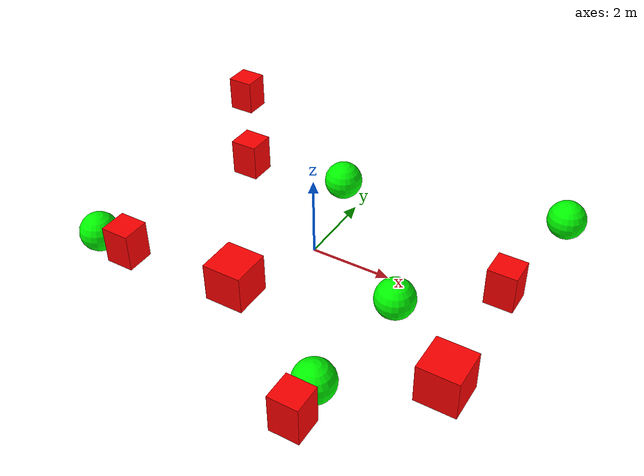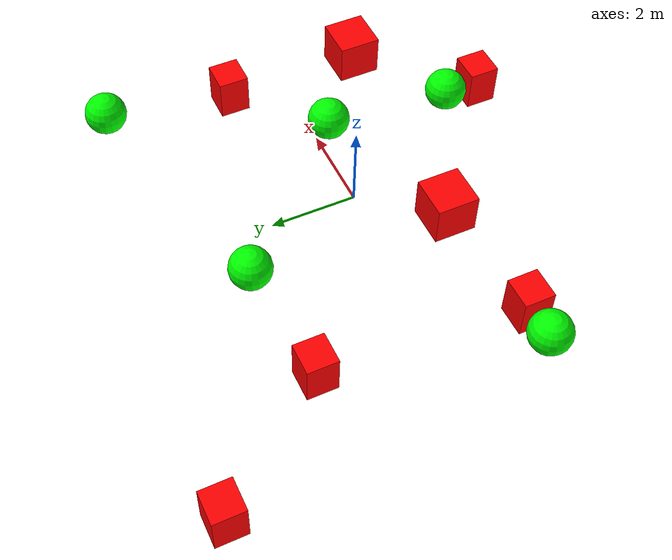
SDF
<?xml version='1.0'?>
<sdf version='1.7'>
  <model name='obstacles'>
    <link name='link_0_clone'>
      <inertial>
        <mass>1</mass>
        <inertia>
          <ixx>0.166667</ixx>
          <ixy>0</ixy>
          <ixz>0</ixz>
          <iyy>0.166667</iyy>
          <iyz>0</iyz>
          <izz>0.166667</izz>
        </inertia>
        <pose>0 0 0 0 -0 0</pose>
      </inertial>
      <pose>-1.07577 -1.79208 0 0 -0 0</pose>
      <gravity>1</gravity>
      <self_collide>0</self_collide>
      <kinematic>0</kinematic>
      <enable_wind>0</enable_wind>
      <visual name='visual'>
        <pose>0 0 0 0 -0 0</pose>
        <geometry>
          <box>
            <size>1 1 1</size>
          </box>
        </geometry>
        <material>
          <lighting>1</lighting>
          <script>
            <uri>file://media/materials/scripts/gazebo.material</uri>
            <name>Gazebo/Grey</name>
          </script>
          <shader type='pixel'>
            <normal_map>__default__</normal_map>
          </shader>
          <ambient>1 0 0 0</ambient>
          <diffuse>0.7 0.7 0.7 1</diffuse>
          <specular>0.01 0.01 0.01 1</specular>
          <emissive>0 0 0 1</emissive>
        </material>
        <transparency>0</transparency>
        <cast_shadows>1</cast_shadows>
      </visual>
      <collision name='collision'>
        <laser_retro>0</laser_retro>
        <max_contacts>10</max_contacts>
        <pose>0 0 0 0 -0 0</pose>
        <geometry>
          <box>
            <size>1 1 1</size>
          </box>
        </geometry>
        <surface>
          <friction>
            <ode>
              <mu>1</mu>
              <mu2>1</mu2>
              <fdir1>0 0 0</fdir1>
              <slip1>0</slip1>
              <slip2>0</slip2>
            </ode>
            <torsional>
              <coefficient>1</coefficient>
              <patch_radius>0</patch_radius>
              <surface_radius>0</surface_radius>
              <use_patch_radius>1</use_patch_radius>
              <ode>
                <slip>0</slip>
              </ode>
            </torsional>
          </friction>
          <bounce>
            <restitution_coefficient>0</restitution_coefficient>
            <threshold>1e+06</threshold>
          </bounce>
          <contact>
            <collide_without_contact>0</collide_without_contact>
            <collide_without_contact_bitmask>1</collide_without_contact_bitmask>
            <collide_bitmask>1</collide_bitmask>
            <ode>
              <soft_cfm>0</soft_cfm>
              <soft_erp>0.2</soft_erp>
              <kp>1e+13</kp>
              <kd>1</kd>
              <max_vel>0.01</max_vel>
              <min_depth>0</min_depth>
            </ode>
            <bullet>
              <split_impulse>1</split_impulse>
              <split_impulse_penetration_threshold>-0.01</split_impulse_penetration_threshold>
              <soft_cfm>0</soft_cfm>
              <soft_erp>0.2</soft_erp>
              <kp>1e+13</kp>
              <kd>1</kd>
            </bullet>
          </contact>
        </surface>
      </collision>
    </link>
    <link name='link_0_clone_clone'>
      <inertial>
        <mass>0.526541</mass>
        <inertia>
          <ixx>0.0663709</ixx>
          <ixy>0</ixy>
          <ixz>0</ixz>
          <iyy>0.0676106</iyy>
          <iyz>0</iyz>
          <izz>0.0462246</izz>
        </inertia>
        <pose>0 0 0 0 -0 0</pose>
      </inertial>
      <pose>4.42258 1.23745 0 0 -0 0</pose>
      <gravity>1</gravity>
      <self_collide>0</self_collide>
      <kinematic>0</kinematic>
      <enable_wind>0</enable_wind>
      <visual name='visual'>
        <pose>0 0 0 0 -0 0</pose>
        <geometry>
          <box>
            <size>0.735432 0.715967 1</size>
          </box>
        </geometry>
        <material>
          <lighting>1</lighting>
          <script>
            <uri>file://media/materials/scripts/gazebo.material</uri>
            <name>Gazebo/Grey</name>
          </script>
          <shader type='pixel'>
            <normal_map>__default__</normal_map>
          </shader>
          <ambient>1 0 0 0</ambient>
          <diffuse>0.7 0.7 0.7 1</diffuse>
          <specular>0.01 0.01 0.01 1</specular>
          <emissive>0 0 0 1</emissive>
        </material>
        <transparency>0</transparency>
        <cast_shadows>1</cast_shadows>
      </visual>
      <visual name='ModelPreview_0::link_0_clone_clone::visual_1'>
        <pose>0 0 0 0 -0 0</pose>
        <geometry>
          <box>
            <size>0.735432 0.715967 1</size>
          </box>
        </geometry>
        <material>
          <lighting>1</lighting>
          <script>
            <uri>file://media/materials/scripts/gazebo.material</uri>
            <name>Gazebo/Grey</name>
          </script>
          <shader type='pixel'>
            <normal_map>__default__</normal_map>
          </shader>
          <ambient>1 0 0 0</ambient>
          <diffuse>0.7 0.7 0.7 1</diffuse>
          <specular>0.01 0.01 0.01 1</specular>
          <emissive>0 0 0 1</emissive>
        </material>
        <transparency>0</transparency>
        <cast_shadows>1</cast_shadows>
      </visual>
      <collision name='collision'>
        <laser_retro>0</laser_retro>
        <max_contacts>10</max_contacts>
        <pose>0 0 0 0 -0 0</pose>
        <geometry>
          <box>
            <size>0.735432 0.715967 1</size>
          </box>
        </geometry>
        <surface>
          <friction>
            <ode>
              <mu>1</mu>
              <mu2>1</mu2>
              <fdir1>0 0 0</fdir1>
              <slip1>0</slip1>
              <slip2>0</slip2>
            </ode>
            <torsional>
              <coefficient>1</coefficient>
              <patch_radius>0</patch_radius>
              <surface_radius>0</surface_radius>
              <use_patch_radius>1</use_patch_radius>
              <ode>
                <slip>0</slip>
              </ode>
            </torsional>
          </friction>
          <bounce>
            <restitution_coefficient>0</restitution_coefficient>
            <threshold>1e+06</threshold>
          </bounce>
          <contact>
            <collide_without_contact>0</collide_without_contact>
            <collide_without_contact_bitmask>1</collide_without_contact_bitmask>
            <collide_bitmask>1</collide_bitmask>
            <ode>
              <soft_cfm>0</soft_cfm>
              <soft_erp>0.2</soft_erp>
              <kp>1e+13</kp>
              <kd>1</kd>
              <max_vel>0.01</max_vel>
              <min_depth>0</min_depth>
            </ode>
            <bullet>
              <split_impulse>1</split_impulse>
              <split_impulse_penetration_threshold>-0.01</split_impulse_penetration_threshold>
              <soft_cfm>0</soft_cfm>
              <soft_erp>0.2</soft_erp>
              <kp>1e+13</kp>
              <kd>1</kd>
            </bullet>
          </contact>
        </surface>
      </collision>
    </link>
    <link name='link_0_clone_clone_0'>
      <inertial>
        <mass>1</mass>
        <inertia>
          <ixx>0.166667</ixx>
          <ixy>0</ixy>
          <ixz>0</ixz>
          <iyy>0.166667</iyy>
          <iyz>0</iyz>
          <izz>0.166667</izz>
        </inertia>
        <pose>0 0 0 0 -0 0</pose>
      </inertial>
      <pose>4.46974 -2.09336 0 0 -0 0</pose>
      <gravity>1</gravity>
      <self_collide>0</self_collide>
      <kinematic>0</kinematic>
      <enable_wind>0</enable_wind>
      <visual name='visual'>
        <pose>0 0 0 0 -0 0</pose>
        <geometry>
          <box>
            <size>1 1 1</size>
          </box>
        </geometry>
        <material>
          <lighting>1</lighting>
          <script>
            <uri>file://media/materials/scripts/gazebo.material</uri>
            <name>Gazebo/Grey</name>
          </script>
          <shader type='pixel'>
            <normal_map>__default__</normal_map>
          </shader>
          <ambient>1 0 0 0</ambient>
          <diffuse>0.7 0.7 0.7 1</diffuse>
          <specular>0.01 0.01 0.01 1</specular>
          <emissive>0 0 0 1</emissive>
        </material>
        <transparency>0</transparency>
        <cast_shadows>1</cast_shadows>
      </visual>
      <collision name='collision'>
        <laser_retro>0</laser_retro>
        <max_contacts>10</max_contacts>
        <pose>0 0 0 0 -0 0</pose>
        <geometry>
          <box>
            <size>1 1 1</size>
          </box>
        </geometry>
        <surface>
          <friction>
            <ode>
              <mu>1</mu>
              <mu2>1</mu2>
              <fdir1>0 0 0</fdir1>
              <slip1>0</slip1>
              <slip2>0</slip2>
            </ode>
            <torsional>
              <coefficient>1</coefficient>
              <patch_radius>0</patch_radius>
              <surface_radius>0</surface_radius>
              <use_patch_radius>1</use_patch_radius>
              <ode>
                <slip>0</slip>
              </ode>
            </torsional>
          </friction>
          <bounce>
            <restitution_coefficient>0</restitution_coefficient>
            <threshold>1e+06</threshold>
          </bounce>
          <contact>
            <collide_without_contact>0</collide_without_contact>
            <collide_without_contact_bitmask>1</collide_without_contact_bitmask>
            <collide_bitmask>1</collide_bitmask>
            <ode>
              <soft_cfm>0</soft_cfm>
              <soft_erp>0.2</soft_erp>
              <kp>1e+13</kp>
              <kd>1</kd>
              <max_vel>0.01</max_vel>
              <min_depth>0</min_depth>
            </ode>
            <bullet>
              <split_impulse>1</split_impulse>
              <split_impulse_penetration_threshold>-0.01</split_impulse_penetration_threshold>
              <soft_cfm>0</soft_cfm>
              <soft_erp>0.2</soft_erp>
              <kp>1e+13</kp>
              <kd>1</kd>
            </bullet>
          </contact>
        </surface>
      </collision>
    </link>
    <link name='link_0_clone_clone_clone'>
      <inertial>
        <mass>0.526541</mass>
        <inertia>
          <ixx>0.0663709</ixx>
          <ixy>0</ixy>
          <ixz>0</ixz>
          <iyy>0.0676106</iyy>
          <iyz>0</iyz>
          <izz>0.0462246</izz>
        </inertia>
        <pose>0 0 0 0 -0 0</pose>
      </inertial>
      <pose>-5.87134 5.51331 0 0 -0 0</pose>
      <gravity>1</gravity>
      <self_collide>0</self_collide>
      <kinematic>0</kinematic>
      <enable_wind>0</enable_wind>
      <visual name='visual_1'>
        <pose>0 0 0 0 -0 0</pose>
        <geometry>
          <box>
            <size>0.735432 0.715967 1</size>
          </box>
        </geometry>
        <material>
          <lighting>1</lighting>
          <script>
            <uri>file://media/materials/scripts/gazebo.material</uri>
            <name>Gazebo/Grey</name>
          </script>
          <shader type='pixel'>
            <normal_map>__default__</normal_map>
          </shader>
          <ambient>1 0 0 0</ambient>
          <diffuse>0.7 0.7 0.7 1</diffuse>
          <specular>0.01 0.01 0.01 1</specular>
          <emissive>0 0 0 1</emissive>
        </material>
        <transparency>0</transparency>
        <cast_shadows>1</cast_shadows>
      </visual>
      <visual name='visual'>
        <pose>0 0 0 0 -0 0</pose>
        <geometry>
          <box>
            <size>0.735432 0.715967 1</size>
          </box>
        </geometry>
        <material>
          <lighting>1</lighting>
          <script>
            <uri>file://media/materials/scripts/gazebo.material</uri>
            <name>Gazebo/Grey</name>
          </script>
          <shader type='pixel'>
            <normal_map>__default__</normal_map>
          </shader>
          <ambient>1 0 0 0</ambient>
          <diffuse>0.7 0.7 0.7 1</diffuse>
          <specular>0.01 0.01 0.01 1</specular>
          <emissive>0 0 0 1</emissive>
        </material>
        <transparency>0</transparency>
        <cast_shadows>1</cast_shadows>
      </visual>
      <collision name='collision'>
        <laser_retro>0</laser_retro>
        <max_contacts>10</max_contacts>
        <pose>0 0 0 0 -0 0</pose>
        <geometry>
          <box>
            <size>0.735432 0.715967 1</size>
          </box>
        </geometry>
        <surface>
          <friction>
            <ode>
              <mu>1</mu>
              <mu2>1</mu2>
              <fdir1>0 0 0</fdir1>
              <slip1>0</slip1>
              <slip2>0</slip2>
            </ode>
            <torsional>
              <coefficient>1</coefficient>
              <patch_radius>0</patch_radius>
              <surface_radius>0</surface_radius>
              <use_patch_radius>1</use_patch_radius>
              <ode>
                <slip>0</slip>
              </ode>
            </torsional>
          </friction>
          <bounce>
            <restitution_coefficient>0</restitution_coefficient>
            <threshold>1e+06</threshold>
          </bounce>
          <contact>
            <collide_without_contact>0</collide_without_contact>
            <collide_without_contact_bitmask>1</collide_without_contact_bitmask>
            <collide_bitmask>1</collide_bitmask>
            <ode>
              <soft_cfm>0</soft_cfm>
              <soft_erp>0.2</soft_erp>
              <kp>1e+13</kp>
              <kd>1</kd>
              <max_vel>0.01</max_vel>
              <min_depth>0</min_depth>
            </ode>
            <bullet>
              <split_impulse>1</split_impulse>
              <split_impulse_penetration_threshold>-0.01</split_impulse_penetration_threshold>
              <soft_cfm>0</soft_cfm>
              <soft_erp>0.2</soft_erp>
              <kp>1e+13</kp>
              <kd>1</kd>
            </bullet>
          </contact>
        </surface>
      </collision>
    </link>
    <link name='link_0_clone_clone_clone_0'>
      <inertial>
        <mass>0.526541</mass>
        <inertia>
          <ixx>0.0663709</ixx>
          <ixy>0</ixy>
          <ixz>0</ixz>
          <iyy>0.0676106</iyy>
          <iyz>0</iyz>
          <izz>0.0462246</izz>
        </inertia>
        <pose>0 0 0 0 -0 0</pose>
      </inertial>
      <pose>-3.71229 2.654 0 0 -0 0</pose>
      <gravity>1</gravity>
      <self_collide>0</self_collide>
      <kinematic>0</kinematic>
      <enable_wind>0</enable_wind>
      <visual name='visual'>
        <pose>0 0 0 0 -0 0</pose>
        <geometry>
          <box>
            <size>0.735432 0.715967 1</size>
          </box>
        </geometry>
        <material>
          <lighting>1</lighting>
          <script>
            <uri>file://media/materials/scripts/gazebo.material</uri>
            <name>Gazebo/Grey</name>
          </script>
          <shader type='pixel'>
            <normal_map>__default__</normal_map>
          </shader>
          <ambient>1 0 0 0</ambient>
          <diffuse>0.7 0.7 0.7 1</diffuse>
          <specular>0.01 0.01 0.01 1</specular>
          <emissive>0 0 0 1</emissive>
        </material>
        <transparency>0</transparency>
        <cast_shadows>1</cast_shadows>
      </visual>
      <visual name='visual_1'>
        <pose>0 0 0 0 -0 0</pose>
        <geometry>
          <box>
            <size>0.735432 0.715967 1</size>
          </box>
        </geometry>
        <material>
          <lighting>1</lighting>
          <script>
            <uri>file://media/materials/scripts/gazebo.material</uri>
            <name>Gazebo/Grey</name>
          </script>
          <shader type='pixel'>
            <normal_map>__default__</normal_map>
          </shader>
          <ambient>1 0 0 0</ambient>
          <diffuse>0.7 0.7 0.7 1</diffuse>
          <specular>0.01 0.01 0.01 1</specular>
          <emissive>0 0 0 1</emissive>
        </material>
        <transparency>0</transparency>
        <cast_shadows>1</cast_shadows>
      </visual>
      <collision name='collision'>
        <laser_retro>0</laser_retro>
        <max_contacts>10</max_contacts>
        <pose>0 0 0 0 -0 0</pose>
        <geometry>
          <box>
            <size>0.735432 0.715967 1</size>
          </box>
        </geometry>
        <surface>
          <friction>
            <ode>
              <mu>1</mu>
              <mu2>1</mu2>
              <fdir1>0 0 0</fdir1>
              <slip1>0</slip1>
              <slip2>0</slip2>
            </ode>
            <torsional>
              <coefficient>1</coefficient>
              <patch_radius>0</patch_radius>
              <surface_radius>0</surface_radius>
              <use_patch_radius>1</use_patch_radius>
              <ode>
                <slip>0</slip>
              </ode>
            </torsional>
          </friction>
          <bounce>
            <restitution_coefficient>0</restitution_coefficient>
            <threshold>1e+06</threshold>
          </bounce>
          <contact>
            <collide_without_contact>0</collide_without_contact>
            <collide_without_contact_bitmask>1</collide_without_contact_bitmask>
            <collide_bitmask>1</collide_bitmask>
            <ode>
              <soft_cfm>0</soft_cfm>
              <soft_erp>0.2</soft_erp>
              <kp>1e+13</kp>
              <kd>1</kd>
              <max_vel>0.01</max_vel>
              <min_depth>0</min_depth>
            </ode>
            <bullet>
              <split_impulse>1</split_impulse>
              <split_impulse_penetration_threshold>-0.01</split_impulse_penetration_threshold>
              <soft_cfm>0</soft_cfm>
              <soft_erp>0.2</soft_erp>
              <kp>1e+13</kp>
              <kd>1</kd>
            </bullet>
          </contact>
        </surface>
      </collision>
    </link>
    <link name='link_0_clone_clone_clone_0_clone'>
      <inertial>
        <mass>0.526541</mass>
        <inertia>
          <ixx>0.0663709</ixx>
          <ixy>0</ixy>
          <ixz>0</ixz>
          <iyy>0.0676106</iyy>
          <iyz>0</iyz>
          <izz>0.0462246</izz>
        </inertia>
        <pose>0 0 0 0 -0 0</pose>
      </inertial>
      <pose>2.20908 -4.40073 0 0 -0 0</pose>
      <gravity>1</gravity>
      <self_collide>0</self_collide>
      <kinematic>0</kinematic>
      <enable_wind>0</enable_wind>
      <visual name='visual_1'>
        <pose>0 0 0 0 -0 0</pose>
        <geometry>
          <box>
            <size>0.735432 0.715967 1</size>
          </box>
        </geometry>
        <material>
          <lighting>1</lighting>
          <script>
            <uri>file://media/materials/scripts/gazebo.material</uri>
            <name>Gazebo/Grey</name>
          </script>
          <shader type='pixel'>
            <normal_map>__default__</normal_map>
          </shader>
          <ambient>1 0 0 0</ambient>
          <diffuse>0.7 0.7 0.7 1</diffuse>
          <specular>0.01 0.01 0.01 1</specular>
          <emissive>0 0 0 1</emissive>
        </material>
        <transparency>0</transparency>
        <cast_shadows>1</cast_shadows>
      </visual>
      <visual name='visual'>
        <pose>0 0 0 0 -0 0</pose>
        <geometry>
          <box>
            <size>0.735432 0.715967 1</size>
          </box>
        </geometry>
        <material>
          <lighting>1</lighting>
          <script>
            <uri>file://media/materials/scripts/gazebo.material</uri>
            <name>Gazebo/Grey</name>
          </script>
          <shader type='pixel'>
            <normal_map>__default__</normal_map>
          </shader>
          <ambient>1 0 0 0</ambient>
          <diffuse>0.7 0.7 0.7 1</diffuse>
          <specular>0.01 0.01 0.01 1</specular>
          <emissive>0 0 0 1</emissive>
        </material>
        <transparency>0</transparency>
        <cast_shadows>1</cast_shadows>
      </visual>
      <collision name='collision'>
        <laser_retro>0</laser_retro>
        <max_contacts>10</max_contacts>
        <pose>0 0 0 0 -0 0</pose>
        <geometry>
          <box>
            <size>0.735432 0.715967 1</size>
          </box>
        </geometry>
        <surface>
          <friction>
            <ode>
              <mu>1</mu>
              <mu2>1</mu2>
              <fdir1>0 0 0</fdir1>
              <slip1>0</slip1>
              <slip2>0</slip2>
            </ode>
            <torsional>
              <coefficient>1</coefficient>
              <patch_radius>0</patch_radius>
              <surface_radius>0</surface_radius>
              <use_patch_radius>1</use_patch_radius>
              <ode>
                <slip>0</slip>
              </ode>
            </torsional>
          </friction>
          <bounce>
            <restitution_coefficient>0</restitution_coefficient>
            <threshold>1e+06</threshold>
          </bounce>
          <contact>
            <collide_without_contact>0</collide_without_contact>
            <collide_without_contact_bitmask>1</collide_without_contact_bitmask>
            <collide_bitmask>1</collide_bitmask>
            <ode>
              <soft_cfm>0</soft_cfm>
              <soft_erp>0.2</soft_erp>
              <kp>1e+13</kp>
              <kd>1</kd>
              <max_vel>0.01</max_vel>
              <min_depth>0</min_depth>
            </ode>
            <bullet>
              <split_impulse>1</split_impulse>
              <split_impulse_penetration_threshold>-0.01</split_impulse_penetration_threshold>
              <soft_cfm>0</soft_cfm>
              <soft_erp>0.2</soft_erp>
              <kp>1e+13</kp>
              <kd>1</kd>
            </bullet>
          </contact>
        </surface>
      </collision>
    </link>
    <link name='link_0_clone_clone_clone_clone'>
      <inertial>
        <mass>0.526541</mass>
        <inertia>
          <ixx>0.0663709</ixx>
          <ixy>0</ixy>
          <ixz>0</ixz>
          <iyy>0.0676106</iyy>
          <iyz>0</iyz>
          <izz>0.0462246</izz>
        </inertia>
        <pose>0 0 0 0 -0 0</pose>
      </inertial>
      <pose>-4.11774 -2.07384 0 0 -0 0</pose>
      <gravity>1</gravity>
      <self_collide>0</self_collide>
      <kinematic>0</kinematic>
      <enable_wind>0</enable_wind>
      <visual name='visual_1'>
        <pose>0 0 0 0 -0 0</pose>
        <geometry>
          <box>
            <size>0.735432 0.715967 1</size>
          </box>
        </geometry>
        <material>
          <lighting>1</lighting>
          <script>
            <uri>file://media/materials/scripts/gazebo.material</uri>
            <name>Gazebo/Grey</name>
          </script>
          <shader type='pixel'>
            <normal_map>__default__</normal_map>
          </shader>
          <ambient>1 0 0 0</ambient>
          <diffuse>0.7 0.7 0.7 1</diffuse>
          <specular>0.01 0.01 0.01 1</specular>
          <emissive>0 0 0 1</emissive>
        </material>
        <transparency>0</transparency>
        <cast_shadows>1</cast_shadows>
      </visual>
      <visual name='visual'>
        <pose>0 0 0 0 -0 0</pose>
        <geometry>
          <box>
            <size>0.735432 0.715967 1</size>
          </box>
        </geometry>
        <material>
          <lighting>1</lighting>
          <script>
            <uri>file://media/materials/scripts/gazebo.material</uri>
            <name>Gazebo/Grey</name>
          </script>
          <shader type='pixel'>
            <normal_map>__default__</normal_map>
          </shader>
          <ambient>1 0 0 0</ambient>
          <diffuse>0.7 0.7 0.7 1</diffuse>
          <specular>0.01 0.01 0.01 1</specular>
          <emissive>0 0 0 1</emissive>
        </material>
        <transparency>0</transparency>
        <cast_shadows>1</cast_shadows>
      </visual>
      <collision name='collision'>
        <laser_retro>0</laser_retro>
        <max_contacts>10</max_contacts>
        <pose>0 0 0 0 -0 0</pose>
        <geometry>
          <box>
            <size>0.735432 0.715967 1</size>
          </box>
        </geometry>
        <surface>
          <friction>
            <ode>
              <mu>1</mu>
              <mu2>1</mu2>
              <fdir1>0 0 0</fdir1>
              <slip1>0</slip1>
              <slip2>0</slip2>
            </ode>
            <torsional>
              <coefficient>1</coefficient>
              <patch_radius>0</patch_radius>
              <surface_radius>0</surface_radius>
              <use_patch_radius>1</use_patch_radius>
              <ode>
                <slip>0</slip>
              </ode>
            </torsional>
          </friction>
          <bounce>
            <restitution_coefficient>0</restitution_coefficient>
            <threshold>1e+06</threshold>
          </bounce>
          <contact>
            <collide_without_contact>0</collide_without_contact>
            <collide_without_contact_bitmask>1</collide_without_contact_bitmask>
            <collide_bitmask>1</collide_bitmask>
            <ode>
              <soft_cfm>0</soft_cfm>
              <soft_erp>0.2</soft_erp>
              <kp>1e+13</kp>
              <kd>1</kd>
              <max_vel>0.01</max_vel>
              <min_depth>0</min_depth>
            </ode>
            <bullet>
              <split_impulse>1</split_impulse>
              <split_impulse_penetration_threshold>-0.01</split_impulse_penetration_threshold>
              <soft_cfm>0</soft_cfm>
              <soft_erp>0.2</soft_erp>
              <kp>1e+13</kp>
              <kd>1</kd>
            </bullet>
          </contact>
        </surface>
      </collision>
    </link>
    <link name='link_1'>
      <inertial>
        <mass>1</mass>
        <inertia>
          <ixx>0.1</ixx>
          <ixy>0</ixy>
          <ixz>0</ixz>
          <iyy>0.1</iyy>
          <iyz>0</iyz>
          <izz>0.1</izz>
        </inertia>
        <pose>0 0 0 0 -0 0</pose>
      </inertial>
      <pose>-4.96833 -2.09772 0 0 -0 0</pose>
      <gravity>1</gravity>
      <self_collide>0</self_collide>
      <kinematic>0</kinematic>
      <enable_wind>0</enable_wind>
      <visual name='visual'>
        <pose>0 0 0 0 -0 0</pose>
        <geometry>
          <sphere>
            <radius>0.5</radius>
          </sphere>
        </geometry>
        <material>
          <lighting>1</lighting>
          <script>
            <uri>file://media/materials/scripts/gazebo.material</uri>
            <name>Gazebo/Grey</name>
          </script>
          <shader type='pixel'>
            <normal_map>__default__</normal_map>
          </shader>
          <ambient>0 1 0 0</ambient>
          <diffuse>0.7 0.7 0.7 1</diffuse>
          <specular>0.01 0.01 0.01 1</specular>
          <emissive>0 0 0 1</emissive>
        </material>
        <transparency>0</transparency>
        <cast_shadows>1</cast_shadows>
      </visual>
      <collision name='collision'>
        <laser_retro>0</laser_retro>
        <max_contacts>10</max_contacts>
        <pose>0 0 0 0 -0 0</pose>
        <geometry>
          <sphere>
            <radius>0.5</radius>
          </sphere>
        </geometry>
        <surface>
          <friction>
            <ode>
              <mu>1</mu>
              <mu2>1</mu2>
              <fdir1>0 0 0</fdir1>
              <slip1>0</slip1>
              <slip2>0</slip2>
            </ode>
            <torsional>
              <coefficient>1</coefficient>
              <patch_radius>0</patch_radius>
              <surface_radius>0</surface_radius>
              <use_patch_radius>1</use_patch_radius>
              <ode>
                <slip>0</slip>
              </ode>
            </torsional>
          </friction>
          <bounce>
            <restitution_coefficient>0</restitution_coefficient>
            <threshold>1e+06</threshold>
          </bounce>
          <contact>
            <collide_without_contact>0</collide_without_contact>
            <collide_without_contact_bitmask>1</collide_without_contact_bitmask>
            <collide_bitmask>1</collide_bitmask>
            <ode>
              <soft_cfm>0</soft_cfm>
              <soft_erp>0.2</soft_erp>
              <kp>1e+13</kp>
              <kd>1</kd>
              <max_vel>0.01</max_vel>
              <min_depth>0</min_depth>
            </ode>
            <bullet>
              <split_impulse>1</split_impulse>
              <split_impulse_penetration_threshold>-0.01</split_impulse_penetration_threshold>
              <soft_cfm>0</soft_cfm>
              <soft_erp>0.2</soft_erp>
              <kp>1e+13</kp>
              <kd>1</kd>
            </bullet>
          </contact>
        </surface>
      </collision>
    </link>
    <link name='link_1_clone'>
      <inertial>
        <mass>1</mass>
        <inertia>
          <ixx>0.1</ixx>
          <ixy>0</ixy>
          <ixz>0</ixz>
          <iyy>0.1</iyy>
          <iyz>0</iyz>
          <izz>0.1</izz>
        </inertia>
        <pose>0 0 0 0 -0 0</pose>
      </inertial>
      <pose>-0.871746 2.8886 0 0 -0 0</pose>
      <gravity>1</gravity>
      <self_collide>0</self_collide>
      <kinematic>0</kinematic>
      <enable_wind>0</enable_wind>
      <visual name='visual'>
        <pose>0 0 0 0 -0 0</pose>
        <geometry>
          <sphere>
            <radius>0.5</radius>
          </sphere>
        </geometry>
        <material>
          <lighting>1</lighting>
          <script>
            <uri>file://media/materials/scripts/gazebo.material</uri>
            <name>Gazebo/Grey</name>
          </script>
          <shader type='pixel'>
            <normal_map>__default__</normal_map>
          </shader>
          <ambient>0 1 0 0</ambient>
          <diffuse>0.7 0.7 0.7 1</diffuse>
          <specular>0.01 0.01 0.01 1</specular>
          <emissive>0 0 0 1</emissive>
        </material>
        <transparency>0</transparency>
        <cast_shadows>1</cast_shadows>
      </visual>
      <collision name='collision'>
        <laser_retro>0</laser_retro>
        <max_contacts>10</max_contacts>
        <pose>0 0 0 0 -0 0</pose>
        <geometry>
          <sphere>
            <radius>0.5</radius>
          </sphere>
        </geometry>
        <surface>
          <friction>
            <ode>
              <mu>1</mu>
              <mu2>1</mu2>
              <fdir1>0 0 0</fdir1>
              <slip1>0</slip1>
              <slip2>0</slip2>
            </ode>
            <torsional>
              <coefficient>1</coefficient>
              <patch_radius>0</patch_radius>
              <surface_radius>0</surface_radius>
              <use_patch_radius>1</use_patch_radius>
              <ode>
                <slip>0</slip>
              </ode>
            </torsional>
          </friction>
          <bounce>
            <restitution_coefficient>0</restitution_coefficient>
            <threshold>1e+06</threshold>
          </bounce>
          <contact>
            <collide_without_contact>0</collide_without_contact>
            <collide_without_contact_bitmask>1</collide_without_contact_bitmask>
            <collide_bitmask>1</collide_bitmask>
            <ode>
              <soft_cfm>0</soft_cfm>
              <soft_erp>0.2</soft_erp>
              <kp>1e+13</kp>
              <kd>1</kd>
              <max_vel>0.01</max_vel>
              <min_depth>0</min_depth>
            </ode>
            <bullet>
              <split_impulse>1</split_impulse>
              <split_impulse_penetration_threshold>-0.01</split_impulse_penetration_threshold>
              <soft_cfm>0</soft_cfm>
              <soft_erp>0.2</soft_erp>
              <kp>1e+13</kp>
              <kd>1</kd>
            </bullet>
          </contact>
        </surface>
      </collision>
    </link>
    <link name='link_1_clone_0'>
      <inertial>
        <mass>1</mass>
        <inertia>
          <ixx>0.1</ixx>
          <ixy>0</ixy>
          <ixz>0</ixz>
          <iyy>0.1</iyy>
          <iyz>0</iyz>
          <izz>0.1</izz>
        </inertia>
        <pose>0 0 0 0 -0 0</pose>
      </inertial>
      <pose>2.47358 -0.536275 0 0 -0 0</pose>
      <gravity>1</gravity>
      <self_collide>0</self_collide>
      <kinematic>0</kinematic>
      <enable_wind>0</enable_wind>
      <visual name='visual'>
        <pose>0 0 0 0 -0 0</pose>
        <geometry>
          <sphere>
            <radius>0.5</radius>
          </sphere>
        </geometry>
        <material>
          <lighting>1</lighting>
          <script>
            <uri>file://media/materials/scripts/gazebo.material</uri>
            <name>Gazebo/Grey</name>
          </script>
          <shader type='pixel'>
            <normal_map>__default__</normal_map>
          </shader>
          <ambient>0 1 0 0</ambient>
          <diffuse>0.7 0.7 0.7 1</diffuse>
          <specular>0.01 0.01 0.01 1</specular>
          <emissive>0 0 0 1</emissive>
        </material>
        <transparency>0</transparency>
        <cast_shadows>1</cast_shadows>
      </visual>
      <collision name='collision'>
        <laser_retro>0</laser_retro>
        <max_contacts>10</max_contacts>
        <pose>0 0 0 0 -0 0</pose>
        <geometry>
          <sphere>
            <radius>0.5</radius>
          </sphere>
        </geometry>
        <surface>
          <friction>
            <ode>
              <mu>1</mu>
              <mu2>1</mu2>
              <fdir1>0 0 0</fdir1>
              <slip1>0</slip1>
              <slip2>0</slip2>
            </ode>
            <torsional>
              <coefficient>1</coefficient>
              <patch_radius>0</patch_radius>
              <surface_radius>0</surface_radius>
              <use_patch_radius>1</use_patch_radius>
              <ode>
                <slip>0</slip>
              </ode>
            </torsional>
          </friction>
          <bounce>
            <restitution_coefficient>0</restitution_coefficient>
            <threshold>1e+06</threshold>
          </bounce>
          <contact>
            <collide_without_contact>0</collide_without_contact>
            <collide_without_contact_bitmask>1</collide_without_contact_bitmask>
            <collide_bitmask>1</collide_bitmask>
            <ode>
              <soft_cfm>0</soft_cfm>
              <soft_erp>0.2</soft_erp>
              <kp>1e+13</kp>
              <kd>1</kd>
              <max_vel>0.01</max_vel>
              <min_depth>0</min_depth>
            </ode>
            <bullet>
              <split_impulse>1</split_impulse>
              <split_impulse_penetration_threshold>-0.01</split_impulse_penetration_threshold>
              <soft_cfm>0</soft_cfm>
              <soft_erp>0.2</soft_erp>
              <kp>1e+13</kp>
              <kd>1</kd>
            </bullet>
          </contact>
        </surface>
      </collision>
    </link>
    <link name='link_1_clone_0_clone'>
      <inertial>
        <mass>1</mass>
        <inertia>
          <ixx>0.1</ixx>
          <ixy>0</ixy>
          <ixz>0</ixz>
          <iyy>0.1</iyy>
          <iyz>0</iyz>
          <izz>0.1</izz>
        </inertia>
        <pose>0 0 0 0 -0 0</pose>
      </inertial>
      <pose>4.85049 4.26022 0 0 -0 0</pose>
      <gravity>1</gravity>
      <self_collide>0</self_collide>
      <kinematic>0</kinematic>
      <enable_wind>0</enable_wind>
      <visual name='visual'>
        <pose>0 0 0 0 -0 0</pose>
        <geometry>
          <sphere>
            <radius>0.5</radius>
          </sphere>
        </geometry>
        <material>
          <lighting>1</lighting>
          <script>
            <uri>file://media/materials/scripts/gazebo.material</uri>
            <name>Gazebo/Grey</name>
          </script>
          <shader type='pixel'>
            <normal_map>__default__</normal_map>
          </shader>
          <ambient>0 1 0 0</ambient>
          <diffuse>0.7 0.7 0.7 1</diffuse>
          <specular>0.01 0.01 0.01 1</specular>
          <emissive>0 0 0 1</emissive>
        </material>
        <transparency>0</transparency>
        <cast_shadows>1</cast_shadows>
      </visual>
      <collision name='collision'>
        <laser_retro>0</laser_retro>
        <max_contacts>10</max_contacts>
        <pose>0 0 0 0 -0 0</pose>
        <geometry>
          <sphere>
            <radius>0.5</radius>
          </sphere>
        </geometry>
        <surface>
          <friction>
            <ode>
              <mu>1</mu>
              <mu2>1</mu2>
              <fdir1>0 0 0</fdir1>
              <slip1>0</slip1>
              <slip2>0</slip2>
            </ode>
            <torsional>
              <coefficient>1</coefficient>
              <patch_radius>0</patch_radius>
              <surface_radius>0</surface_radius>
              <use_patch_radius>1</use_patch_radius>
              <ode>
                <slip>0</slip>
              </ode>
            </torsional>
          </friction>
          <bounce>
            <restitution_coefficient>0</restitution_coefficient>
            <threshold>1e+06</threshold>
          </bounce>
          <contact>
            <collide_without_contact>0</collide_without_contact>
            <collide_without_contact_bitmask>1</collide_without_contact_bitmask>
            <collide_bitmask>1</collide_bitmask>
            <ode>
              <soft_cfm>0</soft_cfm>
              <soft_erp>0.2</soft_erp>
              <kp>1e+13</kp>
              <kd>1</kd>
              <max_vel>0.01</max_vel>
              <min_depth>0</min_depth>
            </ode>
            <bullet>
              <split_impulse>1</split_impulse>
              <split_impulse_penetration_threshold>-0.01</split_impulse_penetration_threshold>
              <soft_cfm>0</soft_cfm>
              <soft_erp>0.2</soft_erp>
              <kp>1e+13</kp>
              <kd>1</kd>
            </bullet>
          </contact>
        </surface>
      </collision>
    </link>
    <link name='link_1_clone_0_clone_clone_clone'>
      <inertial>
        <mass>1</mass>
        <inertia>
          <ixx>0.1</ixx>
          <ixy>0</ixy>
          <ixz>0</ixz>
          <iyy>0.1</iyy>
          <iyz>0</iyz>
          <izz>0.1</izz>
        </inertia>
        <pose>0 0 0 0 -0 0</pose>
      </inertial>
      <pose>2.19173 -3.55957 0 0 -0 0</pose>
      <gravity>1</gravity>
      <self_collide>0</self_collide>
      <kinematic>0</kinematic>
      <enable_wind>0</enable_wind>
      <visual name='visual'>
        <pose>0 0 0 0 -0 0</pose>
        <geometry>
          <sphere>
            <radius>0.5</radius>
          </sphere>
        </geometry>
        <material>
          <lighting>1</lighting>
          <script>
            <uri>file://media/materials/scripts/gazebo.material</uri>
            <name>Gazebo/Grey</name>
          </script>
          <shader type='pixel'>
            <normal_map>__default__</normal_map>
          </shader>
          <ambient>0 1 0 0</ambient>
          <diffuse>0.7 0.7 0.7 1</diffuse>
          <specular>0.01 0.01 0.01 1</specular>
          <emissive>0 0 0 1</emissive>
        </material>
        <transparency>0</transparency>
        <cast_shadows>1</cast_shadows>
      </visual>
      <collision name='collision'>
        <laser_retro>0</laser_retro>
        <max_contacts>10</max_contacts>
        <pose>0 0 0 0 -0 0</pose>
        <geometry>
          <sphere>
            <radius>0.5</radius>
          </sphere>
        </geometry>
        <surface>
          <friction>
            <ode>
              <mu>1</mu>
              <mu2>1</mu2>
              <fdir1>0 0 0</fdir1>
              <slip1>0</slip1>
              <slip2>0</slip2>
            </ode>
            <torsional>
              <coefficient>1</coefficient>
              <patch_radius>0</patch_radius>
              <surface_radius>0</surface_radius>
              <use_patch_radius>1</use_patch_radius>
              <ode>
                <slip>0</slip>
              </ode>
            </torsional>
          </friction>
          <bounce>
            <restitution_coefficient>0</restitution_coefficient>
            <threshold>1e+06</threshold>
          </bounce>
          <contact>
            <collide_without_contact>0</collide_without_contact>
            <collide_without_contact_bitmask>1</collide_without_contact_bitmask>
            <collide_bitmask>1</collide_bitmask>
            <ode>
              <soft_cfm>0</soft_cfm>
              <soft_erp>0.2</soft_erp>
              <kp>1e+13</kp>
              <kd>1</kd>
              <max_vel>0.01</max_vel>
              <min_depth>0</min_depth>
            </ode>
            <bullet>
              <split_impulse>1</split_impulse>
              <split_impulse_penetration_threshold>-0.01</split_impulse_penetration_threshold>
              <soft_cfm>0</soft_cfm>
              <soft_erp>0.2</soft_erp>
              <kp>1e+13</kp>
              <kd>1</kd>
            </bullet>
          </contact>
        </surface>
      </collision>
    </link>
    <static>0</static>
    <allow_auto_disable>1</allow_auto_disable>
  </model>
</sdf>
